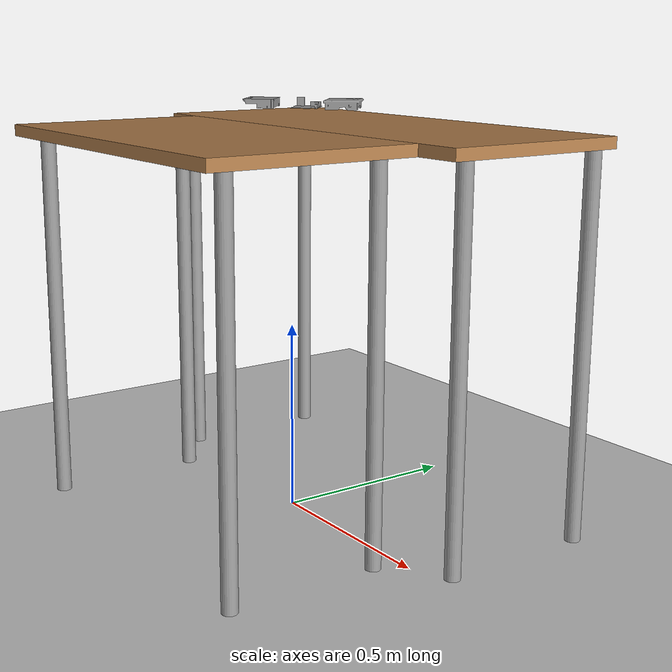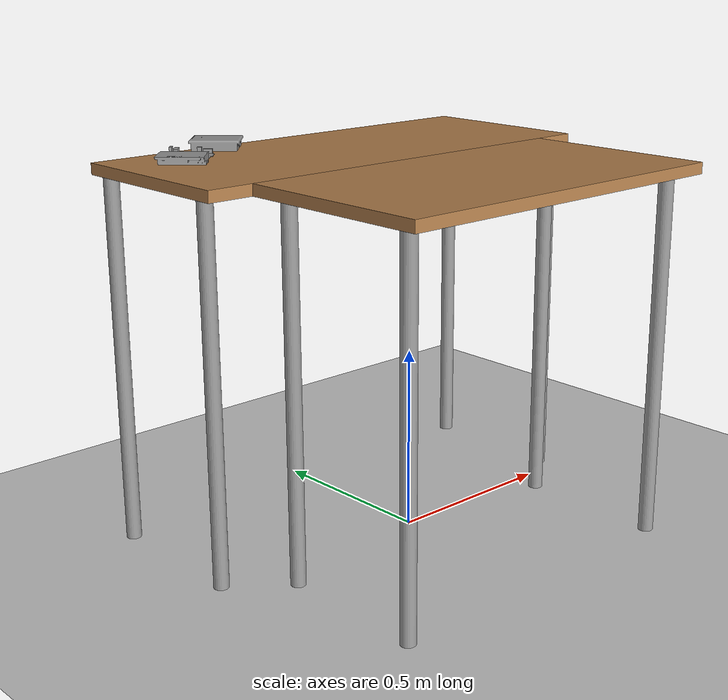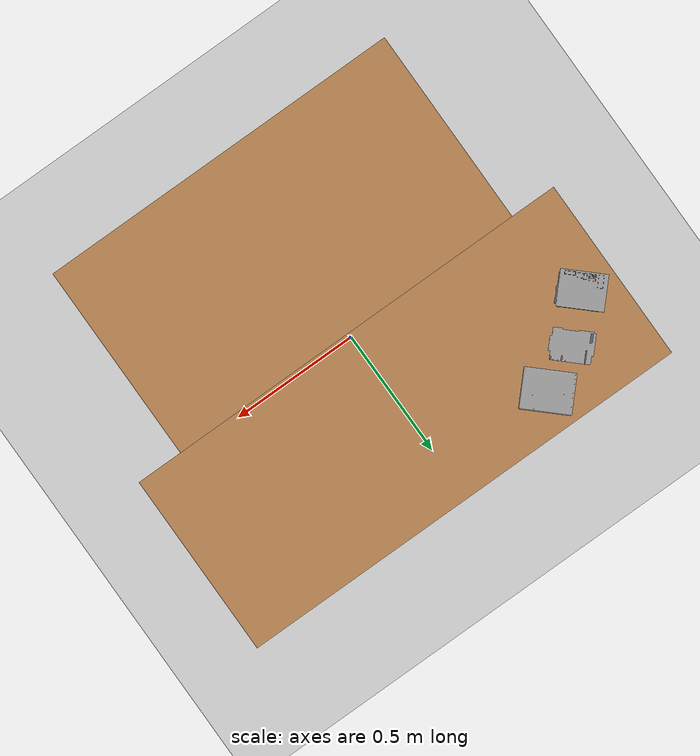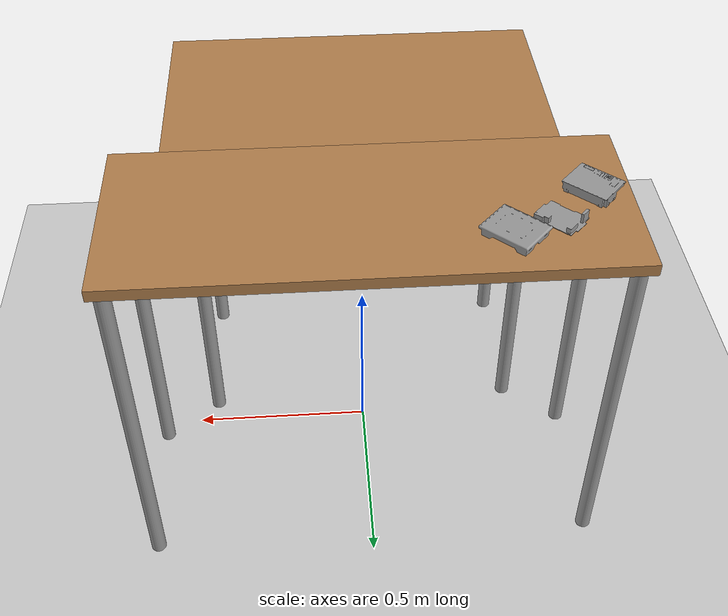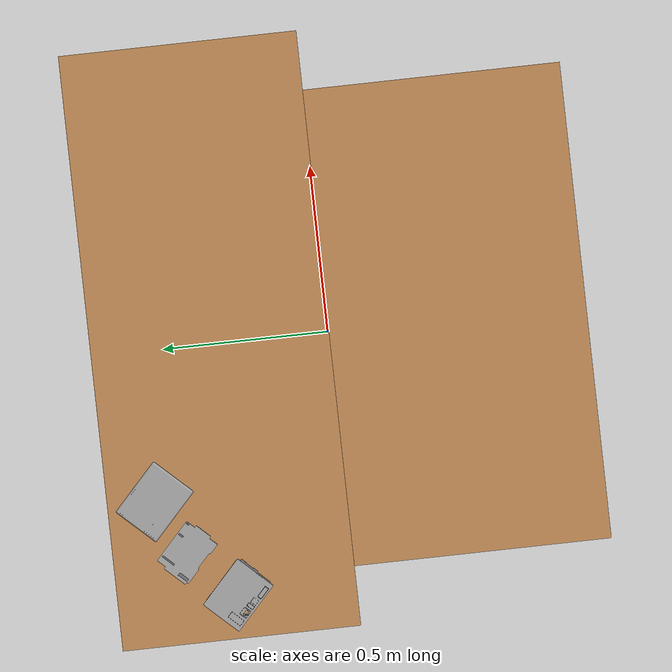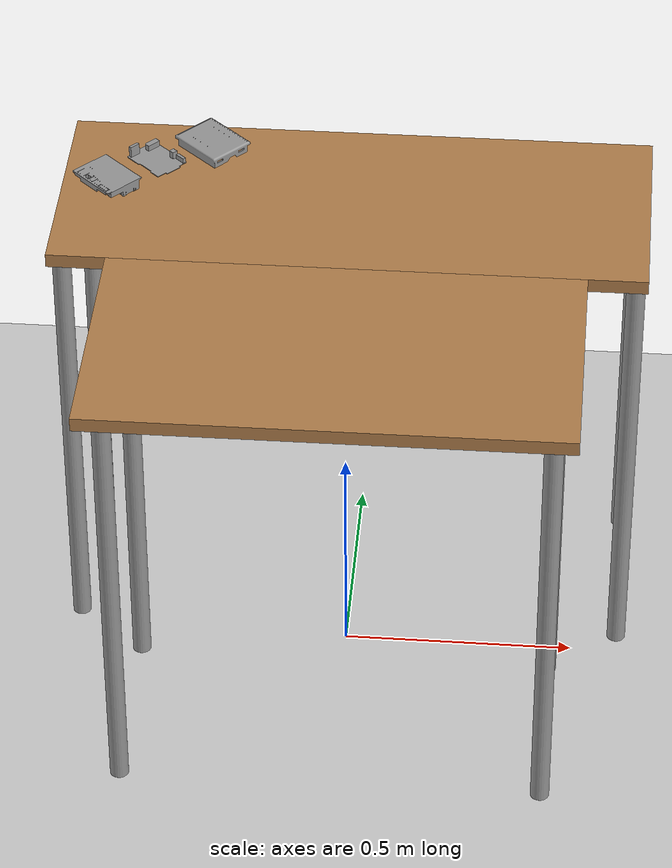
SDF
<sdf version="1.6">
 <world name="default">
  <light name="sun" type="directional">
   <pose>0 0 10 0 -0 0</pose>
   <diffuse>0.8 0.8 0.8 1</diffuse>
   <specular>0.2 0.2 0.2 1</specular>
   <attenuation>
    <range>1000</range>
    <constant>0.9</constant>
    <linear>0.01</linear>
    <quadratic>0.001</quadratic>
   </attenuation>
   <direction>-0.5 0.1 -0.9</direction>
  </light>
  <model name="ground_plane">
   <static>1</static>
   <link name="link">
    <collision name="collision">
     <geometry><plane><normal>0 0 1</normal><size>100 100</size></plane></geometry>
     <surface>
      <contact><collide_bitmask>65535</collide_bitmask></contact>
      <friction><ode><mu>100</mu><mu2>50</mu2></ode></friction>
     </surface>
    </collision>
    <visual name="visual">
     <cast_shadows>0</cast_shadows>
     <geometry><plane><normal>0 0 1</normal><size>100 100</size></plane></geometry>
     <material>
      <script><uri>file://media/materials/scripts/gazebo.material</uri><name>Gazebo/Grey</name></script>
     </material>
    </visual>
   </link>
  </model>
  <gravity>0 0 -9.8</gravity>
  <magnetic_field>6e-06 2.3e-05 -4.2e-05</magnetic_field>
  <atmosphere type="adiabatic"/>
  <physics name="default_physics" default="0" type="ode">
   <max_step_size>0.001</max_step_size>
   <real_time_factor>1</real_time_factor>
   <real_time_update_rate>1000</real_time_update_rate>
  </physics>
  <scene><ambient>0.4 0.4 0.4 1</ambient><background>0.7 0.7 0.7 1</background><shadows>1</shadows></scene>
  <audio><device>default</device></audio>
  <spherical_coordinates>
   <surface_model>EARTH_WGS84</surface_model>
   <latitude_deg>0</latitude_deg>
   <longitude_deg>0</longitude_deg>
   <elevation>0</elevation>
   <heading_deg>0</heading_deg>
  </spherical_coordinates>
  <model name="Werktafel">
   <link name="link">
    <inertial>
     <mass>1</mass>
     <inertia><ixx>1</ixx><ixy>0</ixy><ixz>0</ixz><iyy>1</iyy><iyz>0</iyz><izz>1</izz></inertia>
    </inertial>
    <visual name="visual1">
     <pose>0 0 1 0 -0 0</pose>
     <geometry><box><size>1.25 0.5 0.03</size></box></geometry>
     <material>
      <script><uri>file://media/materials/scripts/gazebo.material</uri><name>Gazebo/Wood</name></script>
      <shader type="vertex"><normal_map>__default__</normal_map></shader>
      <ambient>1 1 1 1</ambient>
      <diffuse>1 1 1 1</diffuse>
      <specular>0.2 0.2 0.2 1</specular>
      <emissive>0 0 0 1</emissive>
     </material>
    </visual>
    <visual name="front_left_leg">
     <pose>0.6 0.2 0.5 0 -0 0</pose>
     <geometry><cylinder><radius>0.02</radius><length>1</length></cylinder></geometry>
     <material>
      <script><uri>file://media/materials/scripts/gazebo.material</uri><name>Gazebo/Grey</name></script>
      <shader type="vertex"><normal_map>__default__</normal_map></shader>
      <ambient>0.3 0.3 0.3 1</ambient>
      <diffuse>0.7 0.7 0.7 1</diffuse>
      <specular>0.01 0.01 0.01 1</specular>
      <emissive>0 0 0 1</emissive>
     </material>
    </visual>
    <visual name="front_right_leg">
     <pose>0.6 -0.2 0.5 0 -0 0</pose>
     <geometry><cylinder><radius>0.02</radius><length>1</length></cylinder></geometry>
     <material>
      <script><uri>file://media/materials/scripts/gazebo.material</uri><name>Gazebo/Grey</name></script>
      <shader type="vertex"><normal_map>__default__</normal_map></shader>
      <ambient>0.3 0.3 0.3 1</ambient>
      <diffuse>0.7 0.7 0.7 1</diffuse>
      <specular>0.01 0.01 0.01 1</specular>
      <emissive>0 0 0 1</emissive>
     </material>
    </visual>
    <visual name="back_right_leg">
     <pose>-0.6 -0.2 0.5 0 -0 0</pose>
     <geometry><cylinder><radius>0.02</radius><length>1</length></cylinder></geometry>
     <material>
      <script><uri>file://media/materials/scripts/gazebo.material</uri><name>Gazebo/Grey</name></script>
      <shader type="vertex"><normal_map>__default__</normal_map></shader>
      <ambient>0.3 0.3 0.3 1</ambient>
      <diffuse>0.7 0.7 0.7 1</diffuse>
      <specular>0.01 0.01 0.01 1</specular>
      <emissive>0 0 0 1</emissive>
     </material>
    </visual>
    <visual name="back_left_leg">
     <pose>-0.6 0.2 0.5 0 -0 0</pose>
     <geometry><cylinder><radius>0.02</radius><length>1</length></cylinder></geometry>
     <material>
      <script><uri>file://media/materials/scripts/gazebo.material</uri><name>Gazebo/Grey</name></script>
      <shader type="vertex"><normal_map>__default__</normal_map></shader>
      <ambient>0.3 0.3 0.3 1</ambient>
      <diffuse>0.7 0.7 0.7 1</diffuse>
      <specular>0.01 0.01 0.01 1</specular>
      <emissive>0 0 0 1</emissive>
     </material>
    </visual>
    <collision name="surface">
     <pose>0 0 1 0 -0 0</pose>
     <geometry><box><size>1.25 0.5 0.03</size></box></geometry>
     <surface>
      <friction>
       <ode><mu>0.6</mu><mu2>0.6</mu2><fdir1>0 0 0</fdir1><slip1>0</slip1><slip2>0</slip2></ode>
       <torsional>
        <coefficient>1</coefficient>
        <patch_radius>0</patch_radius>
        <surface_radius>0</surface_radius>
        <use_patch_radius>1</use_patch_radius>
        <ode><slip>0</slip></ode>
       </torsional>
      </friction>
      <bounce><restitution_coefficient>0</restitution_coefficient><threshold>1e+06</threshold></bounce>
      <contact>
       <collide_without_contact>0</collide_without_contact>
       <collide_without_contact_bitmask>1</collide_without_contact_bitmask>
       <collide_bitmask>1</collide_bitmask>
       <ode>
        <soft_cfm>0</soft_cfm>
        <soft_erp>0.2</soft_erp>
        <kp>1e+13</kp>
        <kd>1</kd>
        <max_vel>0.01</max_vel>
        <min_depth>0</min_depth>
       </ode>
       <bullet>
        <split_impulse>1</split_impulse>
        <split_impulse_penetration_threshold>-0.01</split_impulse_penetration_threshold>
        <soft_cfm>0</soft_cfm>
        <soft_erp>0.2</soft_erp>
        <kp>1e+13</kp>
        <kd>1</kd>
       </bullet>
      </contact>
     </surface>
    </collision>
    <collision name="front_left_leg">
     <pose>0.6 0.2 0.5 0 -0 0</pose>
     <geometry><cylinder><radius>0.02</radius><length>1</length></cylinder></geometry>
     <surface>
      <friction>
       <ode><mu>1</mu><mu2>1</mu2><fdir1>0 0 0</fdir1><slip1>0</slip1><slip2>0</slip2></ode>
       <torsional>
        <coefficient>1</coefficient>
        <patch_radius>0</patch_radius>
        <surface_radius>0</surface_radius>
        <use_patch_radius>1</use_patch_radius>
        <ode><slip>0</slip></ode>
       </torsional>
      </friction>
      <bounce><restitution_coefficient>0</restitution_coefficient><threshold>1e+06</threshold></bounce>
      <contact>
       <collide_without_contact>0</collide_without_contact>
       <collide_without_contact_bitmask>1</collide_without_contact_bitmask>
       <collide_bitmask>1</collide_bitmask>
       <ode>
        <soft_cfm>0</soft_cfm>
        <soft_erp>0.2</soft_erp>
        <kp>1e+13</kp>
        <kd>1</kd>
        <max_vel>0.01</max_vel>
        <min_depth>0</min_depth>
       </ode>
       <bullet>
        <split_impulse>1</split_impulse>
        <split_impulse_penetration_threshold>-0.01</split_impulse_penetration_threshold>
        <soft_cfm>0</soft_cfm>
        <soft_erp>0.2</soft_erp>
        <kp>1e+13</kp>
        <kd>1</kd>
       </bullet>
      </contact>
     </surface>
    </collision>
    <collision name="front_right_leg">
     <pose>0.6 -0.2 0.5 0 -0 0</pose>
     <geometry><cylinder><radius>0.02</radius><length>1</length></cylinder></geometry>
     <surface>
      <friction>
       <ode><mu>1</mu><mu2>1</mu2><fdir1>0 0 0</fdir1><slip1>0</slip1><slip2>0</slip2></ode>
       <torsional>
        <coefficient>1</coefficient>
        <patch_radius>0</patch_radius>
        <surface_radius>0</surface_radius>
        <use_patch_radius>1</use_patch_radius>
        <ode><slip>0</slip></ode>
       </torsional>
      </friction>
      <bounce><restitution_coefficient>0</restitution_coefficient><threshold>1e+06</threshold></bounce>
      <contact>
       <collide_without_contact>0</collide_without_contact>
       <collide_without_contact_bitmask>1</collide_without_contact_bitmask>
       <collide_bitmask>1</collide_bitmask>
       <ode>
        <soft_cfm>0</soft_cfm>
        <soft_erp>0.2</soft_erp>
        <kp>1e+13</kp>
        <kd>1</kd>
        <max_vel>0.01</max_vel>
        <min_depth>0</min_depth>
       </ode>
       <bullet>
        <split_impulse>1</split_impulse>
        <split_impulse_penetration_threshold>-0.01</split_impulse_penetration_threshold>
        <soft_cfm>0</soft_cfm>
        <soft_erp>0.2</soft_erp>
        <kp>1e+13</kp>
        <kd>1</kd>
       </bullet>
      </contact>
     </surface>
    </collision>
    <collision name="back_right_leg">
     <pose>-0.6 -0.2 0.5 0 -0 0</pose>
     <geometry><cylinder><radius>0.02</radius><length>1</length></cylinder></geometry>
     <surface>
      <friction>
       <ode><mu>1</mu><mu2>1</mu2><fdir1>0 0 0</fdir1><slip1>0</slip1><slip2>0</slip2></ode>
       <torsional>
        <coefficient>1</coefficient>
        <patch_radius>0</patch_radius>
        <surface_radius>0</surface_radius>
        <use_patch_radius>1</use_patch_radius>
        <ode><slip>0</slip></ode>
       </torsional>
      </friction>
      <bounce><restitution_coefficient>0</restitution_coefficient><threshold>1e+06</threshold></bounce>
      <contact>
       <collide_without_contact>0</collide_without_contact>
       <collide_without_contact_bitmask>1</collide_without_contact_bitmask>
       <collide_bitmask>1</collide_bitmask>
       <ode>
        <soft_cfm>0</soft_cfm>
        <soft_erp>0.2</soft_erp>
        <kp>1e+13</kp>
        <kd>1</kd>
        <max_vel>0.01</max_vel>
        <min_depth>0</min_depth>
       </ode>
       <bullet>
        <split_impulse>1</split_impulse>
        <split_impulse_penetration_threshold>-0.01</split_impulse_penetration_threshold>
        <soft_cfm>0</soft_cfm>
        <soft_erp>0.2</soft_erp>
        <kp>1e+13</kp>
        <kd>1</kd>
       </bullet>
      </contact>
     </surface>
    </collision>
    <collision name="back_left_leg">
     <pose>-0.6 0.2 0.5 0 -0 0</pose>
     <geometry><cylinder><radius>0.02</radius><length>1</length></cylinder></geometry>
     <surface>
      <friction>
       <ode><mu>1</mu><mu2>1</mu2><fdir1>0 0 0</fdir1><slip1>0</slip1><slip2>0</slip2></ode>
       <torsional>
        <coefficient>1</coefficient>
        <patch_radius>0</patch_radius>
        <surface_radius>0</surface_radius>
        <use_patch_radius>1</use_patch_radius>
        <ode><slip>0</slip></ode>
       </torsional>
      </friction>
      <bounce><restitution_coefficient>0</restitution_coefficient><threshold>1e+06</threshold></bounce>
      <contact>
       <collide_without_contact>0</collide_without_contact>
       <collide_without_contact_bitmask>1</collide_without_contact_bitmask>
       <collide_bitmask>1</collide_bitmask>
       <ode>
        <soft_cfm>0</soft_cfm>
        <soft_erp>0.2</soft_erp>
        <kp>1e+13</kp>
        <kd>1</kd>
        <max_vel>0.01</max_vel>
        <min_depth>0</min_depth>
       </ode>
       <bullet>
        <split_impulse>1</split_impulse>
        <split_impulse_penetration_threshold>-0.01</split_impulse_penetration_threshold>
        <soft_cfm>0</soft_cfm>
        <soft_erp>0.2</soft_erp>
        <kp>1e+13</kp>
        <kd>1</kd>
       </bullet>
      </contact>
     </surface>
    </collision>
   </link>
   <static>1</static>
   <pose>0 0.25 0 0 -0 0</pose>
  </model>
  <model name="Cobot-zijde">
   <link name="link">
    <inertial>
     <mass>1</mass>
     <inertia><ixx>1</ixx><ixy>0</ixy><ixz>0</ixz><iyy>1</iyy><iyz>0</iyz><izz>1</izz></inertia>
    </inertial>
    <visual name="visual1">
     <pose>0 0 1 0 -0 0</pose>
     <geometry><box><size>1 0.54 0.03</size></box></geometry>
     <material>
      <script><uri>file://media/materials/scripts/gazebo.material</uri><name>Gazebo/Wood</name></script>
      <shader type="vertex"><normal_map>__default__</normal_map></shader>
      <ambient>1 1 1 1</ambient>
      <diffuse>1 1 1 1</diffuse>
      <specular>0.2 0.2 0.2 1</specular>
      <emissive>0 0 0 1</emissive>
     </material>
    </visual>
    <visual name="front_left_leg">
     <pose>0.45 0.2 0.5 0 -0 0</pose>
     <geometry><cylinder><radius>0.02</radius><length>1</length></cylinder></geometry>
     <material>
      <script><uri>file://media/materials/scripts/gazebo.material</uri><name>Gazebo/Grey</name></script>
      <shader type="vertex"><normal_map>__default__</normal_map></shader>
      <ambient>0.3 0.3 0.3 1</ambient>
      <diffuse>0.7 0.7 0.7 1</diffuse>
      <specular>0.01 0.01 0.01 1</specular>
      <emissive>0 0 0 1</emissive>
     </material>
    </visual>
    <visual name="front_right_leg">
     <pose>0.45 -0.2 0.5 0 -0 0</pose>
     <geometry><cylinder><radius>0.02</radius><length>1</length></cylinder></geometry>
     <material>
      <script><uri>file://media/materials/scripts/gazebo.material</uri><name>Gazebo/Grey</name></script>
      <shader type="vertex"><normal_map>__default__</normal_map></shader>
      <ambient>0.3 0.3 0.3 1</ambient>
      <diffuse>0.7 0.7 0.7 1</diffuse>
      <specular>0.01 0.01 0.01 1</specular>
      <emissive>0 0 0 1</emissive>
     </material>
    </visual>
    <visual name="back_right_leg">
     <pose>-0.45 -0.2 0.5 0 -0 0</pose>
     <geometry><cylinder><radius>0.02</radius><length>1</length></cylinder></geometry>
     <material>
      <script><uri>file://media/materials/scripts/gazebo.material</uri><name>Gazebo/Grey</name></script>
      <shader type="vertex"><normal_map>__default__</normal_map></shader>
      <ambient>0.3 0.3 0.3 1</ambient>
      <diffuse>0.7 0.7 0.7 1</diffuse>
      <specular>0.01 0.01 0.01 1</specular>
      <emissive>0 0 0 1</emissive>
     </material>
    </visual>
    <visual name="back_left_leg">
     <pose>-0.45 0.2 0.5 0 -0 0</pose>
     <geometry><cylinder><radius>0.02</radius><length>1</length></cylinder></geometry>
     <material>
      <script><uri>file://media/materials/scripts/gazebo.material</uri><name>Gazebo/Grey</name></script>
      <shader type="vertex"><normal_map>__default__</normal_map></shader>
      <ambient>0.3 0.3 0.3 1</ambient>
      <diffuse>0.7 0.7 0.7 1</diffuse>
      <specular>0.01 0.01 0.01 1</specular>
      <emissive>0 0 0 1</emissive>
     </material>
    </visual>
    <collision name="surface">
     <pose>0 0 1 0 -0 0</pose>
     <geometry><box><size>1 0.54 0.03</size></box></geometry>
     <surface>
      <friction>
       <ode><mu>0.6</mu><mu2>0.6</mu2><fdir1>0 0 0</fdir1><slip1>0</slip1><slip2>0</slip2></ode>
       <torsional>
        <coefficient>1</coefficient>
        <patch_radius>0</patch_radius>
        <surface_radius>0</surface_radius>
        <use_patch_radius>1</use_patch_radius>
        <ode><slip>0</slip></ode>
       </torsional>
      </friction>
      <bounce><restitution_coefficient>0</restitution_coefficient><threshold>1e+06</threshold></bounce>
      <contact>
       <collide_without_contact>0</collide_without_contact>
       <collide_without_contact_bitmask>1</collide_without_contact_bitmask>
       <collide_bitmask>1</collide_bitmask>
       <ode>
        <soft_cfm>0</soft_cfm>
        <soft_erp>0.2</soft_erp>
        <kp>1e+13</kp>
        <kd>1</kd>
        <max_vel>0.01</max_vel>
        <min_depth>0</min_depth>
       </ode>
       <bullet>
        <split_impulse>1</split_impulse>
        <split_impulse_penetration_threshold>-0.01</split_impulse_penetration_threshold>
        <soft_cfm>0</soft_cfm>
        <soft_erp>0.2</soft_erp>
        <kp>1e+13</kp>
        <kd>1</kd>
       </bullet>
      </contact>
     </surface>
    </collision>
    <collision name="front_left_leg">
     <pose>0.45 0.2 0.5 0 -0 0</pose>
     <geometry><cylinder><radius>0.02</radius><length>1</length></cylinder></geometry>
     <surface>
      <friction>
       <ode><mu>1</mu><mu2>1</mu2><fdir1>0 0 0</fdir1><slip1>0</slip1><slip2>0</slip2></ode>
       <torsional>
        <coefficient>1</coefficient>
        <patch_radius>0</patch_radius>
        <surface_radius>0</surface_radius>
        <use_patch_radius>1</use_patch_radius>
        <ode><slip>0</slip></ode>
       </torsional>
      </friction>
      <bounce><restitution_coefficient>0</restitution_coefficient><threshold>1e+06</threshold></bounce>
      <contact>
       <collide_without_contact>0</collide_without_contact>
       <collide_without_contact_bitmask>1</collide_without_contact_bitmask>
       <collide_bitmask>1</collide_bitmask>
       <ode>
        <soft_cfm>0</soft_cfm>
        <soft_erp>0.2</soft_erp>
        <kp>1e+13</kp>
        <kd>1</kd>
        <max_vel>0.01</max_vel>
        <min_depth>0</min_depth>
       </ode>
       <bullet>
        <split_impulse>1</split_impulse>
        <split_impulse_penetration_threshold>-0.01</split_impulse_penetration_threshold>
        <soft_cfm>0</soft_cfm>
        <soft_erp>0.2</soft_erp>
        <kp>1e+13</kp>
        <kd>1</kd>
       </bullet>
      </contact>
     </surface>
    </collision>
    <collision name="front_right_leg">
     <pose>0.45 -0.2 0.5 0 -0 0</pose>
     <geometry><cylinder><radius>0.02</radius><length>1</length></cylinder></geometry>
     <surface>
      <friction>
       <ode><mu>1</mu><mu2>1</mu2><fdir1>0 0 0</fdir1><slip1>0</slip1><slip2>0</slip2></ode>
       <torsional>
        <coefficient>1</coefficient>
        <patch_radius>0</patch_radius>
        <surface_radius>0</surface_radius>
        <use_patch_radius>1</use_patch_radius>
        <ode><slip>0</slip></ode>
       </torsional>
      </friction>
      <bounce><restitution_coefficient>0</restitution_coefficient><threshold>1e+06</threshold></bounce>
      <contact>
       <collide_without_contact>0</collide_without_contact>
       <collide_without_contact_bitmask>1</collide_without_contact_bitmask>
       <collide_bitmask>1</collide_bitmask>
       <ode>
        <soft_cfm>0</soft_cfm>
        <soft_erp>0.2</soft_erp>
        <kp>1e+13</kp>
        <kd>1</kd>
        <max_vel>0.01</max_vel>
        <min_depth>0</min_depth>
       </ode>
       <bullet>
        <split_impulse>1</split_impulse>
        <split_impulse_penetration_threshold>-0.01</split_impulse_penetration_threshold>
        <soft_cfm>0</soft_cfm>
        <soft_erp>0.2</soft_erp>
        <kp>1e+13</kp>
        <kd>1</kd>
       </bullet>
      </contact>
     </surface>
    </collision>
    <collision name="back_right_leg">
     <pose>-0.44 -0.2 0.5 0 -0 0</pose>
     <geometry><cylinder><radius>0.02</radius><length>1</length></cylinder></geometry>
     <surface>
      <friction>
       <ode><mu>1</mu><mu2>1</mu2><fdir1>0 0 0</fdir1><slip1>0</slip1><slip2>0</slip2></ode>
       <torsional>
        <coefficient>1</coefficient>
        <patch_radius>0</patch_radius>
        <surface_radius>0</surface_radius>
        <use_patch_radius>1</use_patch_radius>
        <ode><slip>0</slip></ode>
       </torsional>
      </friction>
      <bounce><restitution_coefficient>0</restitution_coefficient><threshold>1e+06</threshold></bounce>
      <contact>
       <collide_without_contact>0</collide_without_contact>
       <collide_without_contact_bitmask>1</collide_without_contact_bitmask>
       <collide_bitmask>1</collide_bitmask>
       <ode>
        <soft_cfm>0</soft_cfm>
        <soft_erp>0.2</soft_erp>
        <kp>1e+13</kp>
        <kd>1</kd>
        <max_vel>0.01</max_vel>
        <min_depth>0</min_depth>
       </ode>
       <bullet>
        <split_impulse>1</split_impulse>
        <split_impulse_penetration_threshold>-0.01</split_impulse_penetration_threshold>
        <soft_cfm>0</soft_cfm>
        <soft_erp>0.2</soft_erp>
        <kp>1e+13</kp>
        <kd>1</kd>
       </bullet>
      </contact>
     </surface>
    </collision>
    <collision name="back_left_leg">
     <pose>-0.45 0.2 0.5 0 -0 0</pose>
     <geometry><cylinder><radius>0.02</radius><length>1</length></cylinder></geometry>
     <surface>
      <friction>
       <ode><mu>1</mu><mu2>1</mu2><fdir1>0 0 0</fdir1><slip1>0</slip1><slip2>0</slip2></ode>
       <torsional>
        <coefficient>1</coefficient>
        <patch_radius>0</patch_radius>
        <surface_radius>0</surface_radius>
        <use_patch_radius>1</use_patch_radius>
        <ode><slip>0</slip></ode>
       </torsional>
      </friction>
      <bounce><restitution_coefficient>0</restitution_coefficient><threshold>1e+06</threshold></bounce>
      <contact>
       <collide_without_contact>0</collide_without_contact>
       <collide_without_contact_bitmask>1</collide_without_contact_bitmask>
       <collide_bitmask>1</collide_bitmask>
       <ode>
        <soft_cfm>0</soft_cfm>
        <soft_erp>0.2</soft_erp>
        <kp>1e+13</kp>
        <kd>1</kd>
        <max_vel>0.01</max_vel>
        <min_depth>0</min_depth>
       </ode>
       <bullet>
        <split_impulse>1</split_impulse>
        <split_impulse_penetration_threshold>-0.01</split_impulse_penetration_threshold>
        <soft_cfm>0</soft_cfm>
        <soft_erp>0.2</soft_erp>
        <kp>1e+13</kp>
        <kd>1</kd>
       </bullet>
      </contact>
     </surface>
    </collision>
   </link>
   <static>1</static>
   <pose>0 -0.27 0 0 -0 0</pose>
  </model>
  <model name="Beschermkap">
   <link name="link_3">
    <inertial>
     <mass>1</mass>
     <inertia>
      <ixx>0.166667</ixx>
      <ixy>0</ixy>
      <ixz>0</ixz>
      <iyy>0.166667</iyy>
      <iyz>0</iyz>
      <izz>0.166667</izz>
     </inertia>
    </inertial>
    <visual name="visual">
     <geometry>
      <mesh><uri>/home/niels/Downloads/Omron beschermkap.STL</uri><scale>0.001 0.001 0.001</scale></mesh>
     </geometry>
     <material>
      <lighting>1</lighting>
      <script><uri>file://media/materials/scripts/gazebo.material</uri><name>Gazebo/Grey</name></script>
      <shader type="vertex"><normal_map>__default__</normal_map></shader>
      <ambient>0.3 0.3 0.3 1</ambient>
      <diffuse>0.7 0.7 0.7 1</diffuse>
      <specular>0.01 0.01 0.01 1</specular>
      <emissive>0 0 0 1</emissive>
     </material>
    </visual>
    <collision name="collision">
     <geometry>
      <mesh><uri>/home/niels/Downloads/Omron beschermkap.STL</uri><scale>0.001 0.001 0.001</scale></mesh>
     </geometry>
     <surface>
      <friction>
       <ode><mu>1</mu><mu2>1</mu2><fdir1>0 0 0</fdir1><slip1>0</slip1><slip2>0</slip2></ode>
       <torsional>
        <coefficient>1</coefficient>
        <patch_radius>0</patch_radius>
        <surface_radius>0</surface_radius>
        <use_patch_radius>1</use_patch_radius>
        <ode><slip>0</slip></ode>
       </torsional>
      </friction>
      <bounce><restitution_coefficient>0</restitution_coefficient><threshold>1e+06</threshold></bounce>
      <contact>
       <collide_without_contact>0</collide_without_contact>
       <collide_without_contact_bitmask>1</collide_without_contact_bitmask>
       <collide_bitmask>1</collide_bitmask>
       <ode>
        <soft_cfm>0</soft_cfm>
        <soft_erp>0.2</soft_erp>
        <kp>1e+13</kp>
        <kd>1</kd>
        <max_vel>0.01</max_vel>
        <min_depth>0</min_depth>
       </ode>
       <bullet>
        <split_impulse>1</split_impulse>
        <split_impulse_penetration_threshold>-0.01</split_impulse_penetration_threshold>
        <soft_cfm>0</soft_cfm>
        <soft_erp>0.2</soft_erp>
        <kp>1e+13</kp>
        <kd>1</kd>
       </bullet>
      </contact>
     </surface>
    </collision>
   </link>
   <static>1</static>
   <pose>-0.6 0.25 1.03 0 0 -0.75</pose>
  </model>
  <model name="PCB">
   <link name="link_0">
    <inertial>
     <mass>1</mass>
     <inertia>
      <ixx>0.166667</ixx>
      <ixy>0</ixy>
      <ixz>0</ixz>
      <iyy>0.166667</iyy>
      <iyz>0</iyz>
      <izz>0.166667</izz>
     </inertia>
    </inertial>
    <visual name="visual">
     <geometry>
      <mesh><uri>/home/niels/Downloads/Omron PCB.STL</uri><scale>0.001 0.001 0.001</scale></mesh>
     </geometry>
     <material>
      <lighting>1</lighting>
      <script><uri>file://media/materials/scripts/gazebo.material</uri><name>Gazebo/Grey</name></script>
      <shader type="vertex"><normal_map>__default__</normal_map></shader>
      <ambient>0.3 0.3 0.3 1</ambient>
      <diffuse>0.7 0.7 0.7 1</diffuse>
      <specular>0.01 0.01 0.01 1</specular>
      <emissive>0 0 0 1</emissive>
     </material>
    </visual>
    <collision name="collision">
     <geometry>
      <mesh><uri>/home/niels/Downloads/Omron PCB.STL</uri><scale>0.001 0.001 0.001</scale></mesh>
     </geometry>
     <surface>
      <friction>
       <ode><mu>1</mu><mu2>1</mu2><fdir1>0 0 0</fdir1><slip1>0</slip1><slip2>0</slip2></ode>
       <torsional>
        <coefficient>1</coefficient>
        <patch_radius>0</patch_radius>
        <surface_radius>0</surface_radius>
        <use_patch_radius>1</use_patch_radius>
        <ode><slip>0</slip></ode>
       </torsional>
      </friction>
      <bounce><restitution_coefficient>0</restitution_coefficient><threshold>1e+06</threshold></bounce>
      <contact>
       <collide_without_contact>0</collide_without_contact>
       <collide_without_contact_bitmask>1</collide_without_contact_bitmask>
       <collide_bitmask>1</collide_bitmask>
       <ode>
        <soft_cfm>0</soft_cfm>
        <soft_erp>0.2</soft_erp>
        <kp>1e+13</kp>
        <kd>1</kd>
        <max_vel>0.01</max_vel>
        <min_depth>0</min_depth>
       </ode>
       <bullet>
        <split_impulse>1</split_impulse>
        <split_impulse_penetration_threshold>-0.01</split_impulse_penetration_threshold>
        <soft_cfm>0</soft_cfm>
        <soft_erp>0.2</soft_erp>
        <kp>1e+13</kp>
        <kd>1</kd>
       </bullet>
      </contact>
     </surface>
    </collision>
   </link>
   <static>1</static>
   <pose>-0.5 0.35 1.03 0 0 -0.750001</pose>
  </model>
  <model name="LCD">
   <link name="link_1">
    <inertial>
     <mass>1</mass>
     <inertia>
      <ixx>0.166667</ixx>
      <ixy>0</ixy>
      <ixz>0</ixz>
      <iyy>0.166667</iyy>
      <iyz>0</iyz>
      <izz>0.166667</izz>
     </inertia>
    </inertial>
    <visual name="visual">
     <geometry>
      <mesh><uri>/home/niels/Downloads/Omron LCD.STL</uri><scale>0.001 0.001 0.001</scale></mesh>
     </geometry>
     <material>
      <lighting>1</lighting>
      <script><uri>file://media/materials/scripts/gazebo.material</uri><name>Gazebo/Grey</name></script>
      <shader type="vertex"><normal_map>__default__</normal_map></shader>
      <ambient>0.3 0.3 0.3 1</ambient>
      <diffuse>0.7 0.7 0.7 1</diffuse>
      <specular>0.01 0.01 0.01 1</specular>
      <emissive>0 0 0 1</emissive>
     </material>
    </visual>
    <collision name="collision">
     <geometry>
      <mesh><uri>/home/niels/Downloads/Omron LCD.STL</uri><scale>0.001 0.001 0.001</scale></mesh>
     </geometry>
     <surface>
      <friction>
       <ode><mu>1</mu><mu2>1</mu2><fdir1>0 0 0</fdir1><slip1>0</slip1><slip2>0</slip2></ode>
       <torsional>
        <coefficient>1</coefficient>
        <patch_radius>0</patch_radius>
        <surface_radius>0</surface_radius>
        <use_patch_radius>1</use_patch_radius>
        <ode><slip>0</slip></ode>
       </torsional>
      </friction>
      <bounce><restitution_coefficient>0</restitution_coefficient><threshold>1e+06</threshold></bounce>
      <contact>
       <collide_without_contact>0</collide_without_contact>
       <collide_without_contact_bitmask>1</collide_without_contact_bitmask>
       <collide_bitmask>1</collide_bitmask>
       <ode>
        <soft_cfm>0</soft_cfm>
        <soft_erp>0.2</soft_erp>
        <kp>1e+13</kp>
        <kd>1</kd>
        <max_vel>0.01</max_vel>
        <min_depth>0</min_depth>
       </ode>
       <bullet>
        <split_impulse>1</split_impulse>
        <split_impulse_penetration_threshold>-0.01</split_impulse_penetration_threshold>
        <soft_cfm>0</soft_cfm>
        <soft_erp>0.2</soft_erp>
        <kp>1e+13</kp>
        <kd>1</kd>
       </bullet>
      </contact>
     </surface>
    </collision>
   </link>
   <static>1</static>
   <pose>-0.4 0.4 1.03 0 0 -0.75</pose>
  </model>
 </world>
</sdf>
